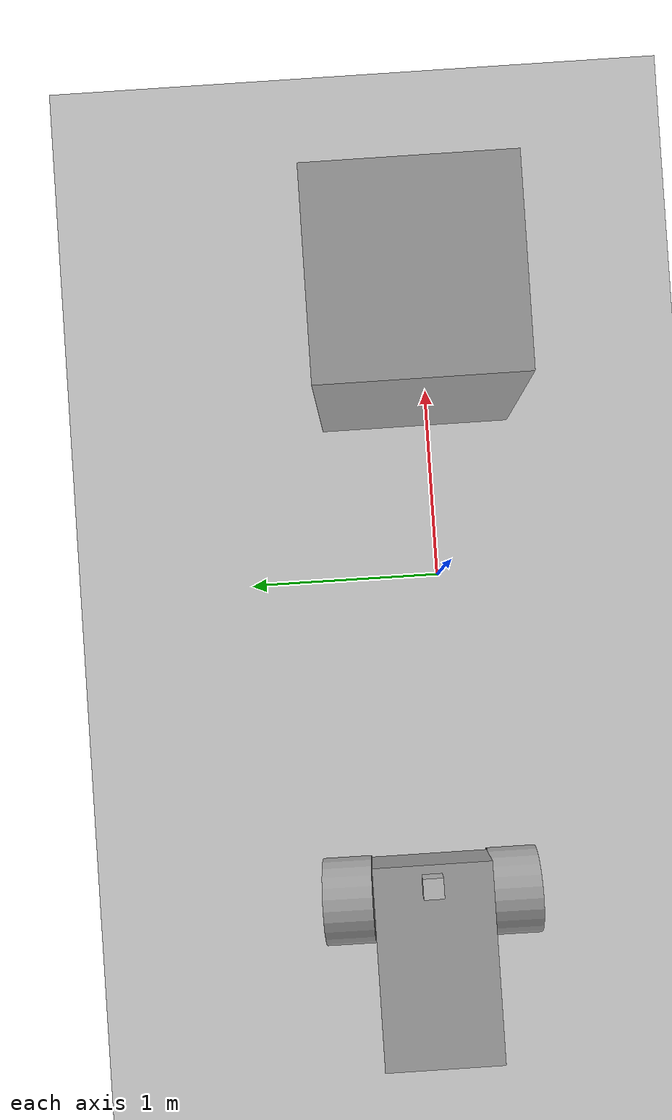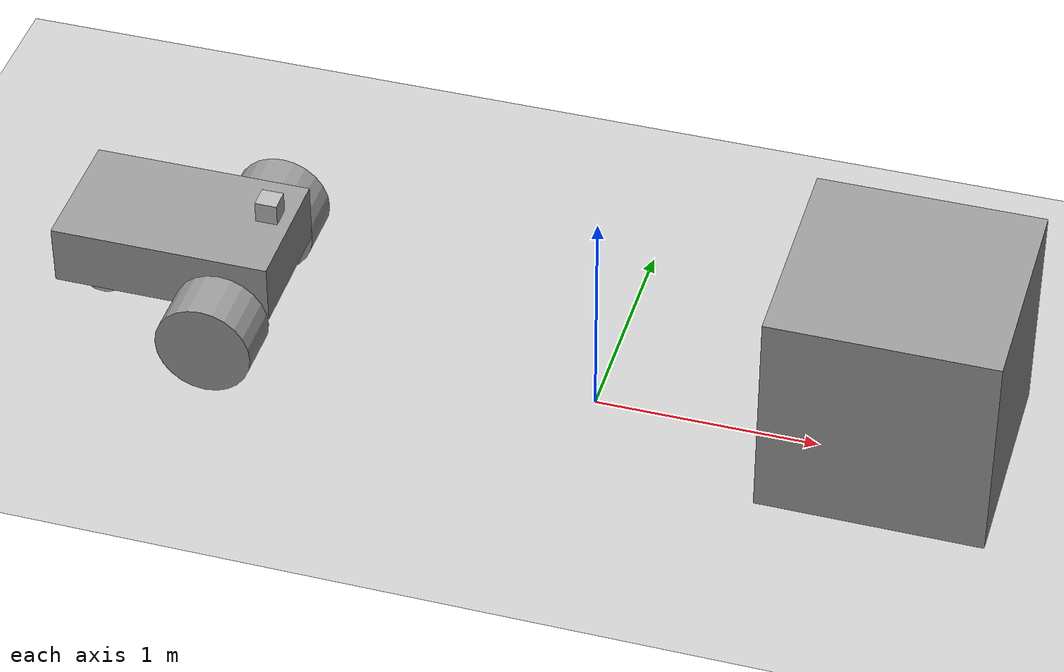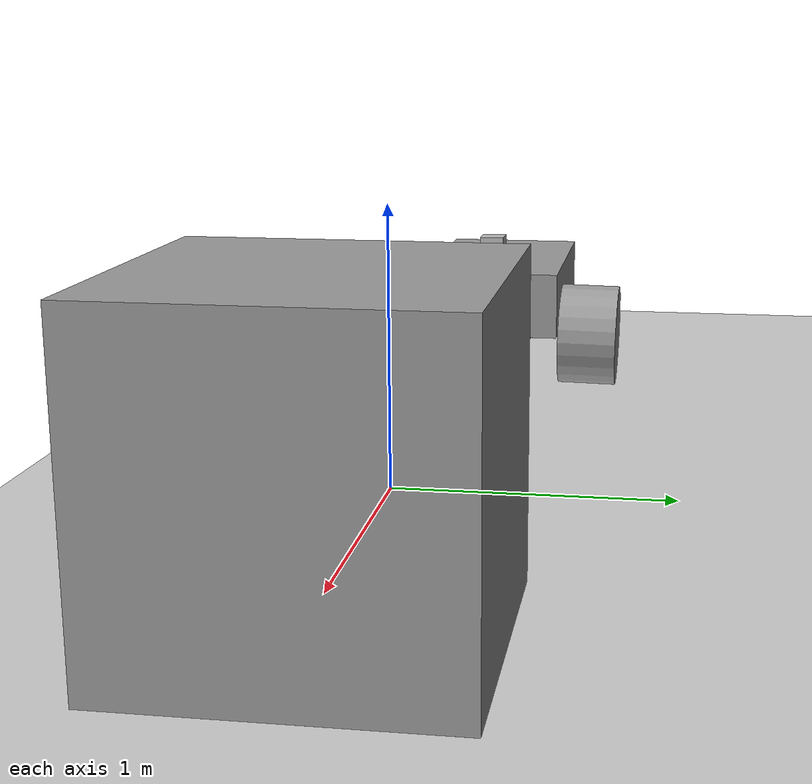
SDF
<sdf version="1.6">
 <world name="default">
  <light name="sun" type="directional">
   <pose>0 0 10 0 -0 0</pose>
   <diffuse>0.8 0.8 0.8 1</diffuse>
   <specular>0.2 0.2 0.2 1</specular>
   <attenuation>
    <range>1000</range>
    <constant>0.9</constant>
    <linear>0.01</linear>
    <quadratic>0.001</quadratic>
   </attenuation>
   <direction>-0.5 0.1 -0.9</direction>
  </light>
  <model name="ground_plane">
   <static>1</static>
   <link name="link">
    <collision name="collision">
     <geometry><plane><normal>0 0 1</normal><size>100 100</size></plane></geometry>
     <surface>
      <contact><collide_bitmask>65535</collide_bitmask></contact>
      <friction><ode><mu>100</mu><mu2>50</mu2></ode></friction>
     </surface>
    </collision>
    <visual name="visual">
     <cast_shadows>0</cast_shadows>
     <geometry><plane><normal>0 0 1</normal><size>100 100</size></plane></geometry>
     <material>
      <script><uri>file://media/materials/scripts/gazebo.material</uri><name>Gazebo/Grey</name></script>
     </material>
    </visual>
   </link>
  </model>
  <gravity>0 0 -9.8</gravity>
  <magnetic_field>6e-06 2.3e-05 -4.2e-05</magnetic_field>
  <atmosphere type="adiabatic"/>
  <physics name="default_physics" default="0" type="ode">
   <max_step_size>0.001</max_step_size>
   <real_time_factor>1</real_time_factor>
   <real_time_update_rate>1000</real_time_update_rate>
  </physics>
  <scene><ambient>0.4 0.4 0.4 1</ambient><background>0.7 0.7 0.7 1</background><shadows>1</shadows></scene>
  <audio><device>default</device></audio>
  <spherical_coordinates>
   <surface_model>EARTH_WGS84</surface_model>
   <latitude_deg>0</latitude_deg>
   <longitude_deg>0</longitude_deg>
   <elevation>0</elevation>
   <heading_deg>0</heading_deg>
  </spherical_coordinates>
  <model name="follower">
   <link name="link_0">
    <inertial>
     <mass>0.165058</mass>
     <inertia>
      <ixx>0.00589341</ixx>
      <ixy>0</ixy>
      <ixz>0</ixz>
      <iyy>0.0148231</iyy>
      <iyz>0</iyz>
      <izz>0.01858</izz>
     </inertia>
    </inertial>
    <pose>-0.121242 -0.000135 0.077307 0 -0 0</pose>
    <visual name="visual">
     <geometry><box><size>1 0.592281 0.278682</size></box></geometry>
     <material>
      <lighting>1</lighting>
      <script><uri>file://media/materials/scripts/gazebo.material</uri><name>Gazebo/Grey</name></script>
      <shader type="pixel"><normal_map>__default__</normal_map></shader>
      <ambient>0.3 0.3 0.3 1</ambient>
      <diffuse>0.7 0.7 0.7 1</diffuse>
      <specular>0.01 0.01 0.01 1</specular>
      <emissive>0 0 0 1</emissive>
     </material>
    </visual>
    <collision name="collision">
     <geometry><box><size>1 0.592281 0.278682</size></box></geometry>
     <surface>
      <friction>
       <ode><mu>1</mu><mu2>1</mu2><fdir1>0 0 0</fdir1><slip1>0</slip1><slip2>0</slip2></ode>
       <torsional>
        <coefficient>1</coefficient>
        <patch_radius>0</patch_radius>
        <surface_radius>0</surface_radius>
        <use_patch_radius>1</use_patch_radius>
        <ode><slip>0</slip></ode>
       </torsional>
      </friction>
      <bounce><restitution_coefficient>0</restitution_coefficient><threshold>1e+06</threshold></bounce>
      <contact>
       <collide_without_contact>0</collide_without_contact>
       <collide_without_contact_bitmask>1</collide_without_contact_bitmask>
       <collide_bitmask>1</collide_bitmask>
       <ode>
        <soft_cfm>0</soft_cfm>
        <soft_erp>0.2</soft_erp>
        <kp>1e+13</kp>
        <kd>1</kd>
        <max_vel>0.01</max_vel>
        <min_depth>0</min_depth>
       </ode>
       <bullet>
        <split_impulse>1</split_impulse>
        <split_impulse_penetration_threshold>-0.01</split_impulse_penetration_threshold>
        <soft_cfm>0</soft_cfm>
        <soft_erp>0.2</soft_erp>
        <kp>1e+13</kp>
        <kd>1</kd>
       </bullet>
      </contact>
     </surface>
    </collision>
   </link>
   <link name="link_1">
    <inertial>
     <mass>0.048626</mass>
     <inertia>
      <ixx>0.00084386</ixx>
      <ixy>0</ixy>
      <ixz>0</ixz>
      <iyy>0.00084386</iyy>
      <iyz>0</iyz>
      <izz>0.00117582</izz>
     </inertia>
    </inertial>
    <pose>0.158845 -0.425997 -0.08475 1.55224 -0 0</pose>
    <visual name="visual">
     <geometry><cylinder><radius>0.219914</radius><length>0.251324</length></cylinder></geometry>
     <material>
      <lighting>1</lighting>
      <script><uri>file://media/materials/scripts/gazebo.material</uri><name>Gazebo/Grey</name></script>
      <shader type="pixel"><normal_map>__default__</normal_map></shader>
      <ambient>0.3 0.3 0.3 1</ambient>
      <diffuse>0.7 0.7 0.7 1</diffuse>
      <specular>0.01 0.01 0.01 1</specular>
      <emissive>0 0 0 1</emissive>
     </material>
    </visual>
    <collision name="collision">
     <geometry><cylinder><radius>0.219914</radius><length>0.251324</length></cylinder></geometry>
     <surface>
      <friction>
       <ode><mu>1</mu><mu2>1</mu2><fdir1>0 0 0</fdir1><slip1>0</slip1><slip2>0</slip2></ode>
       <torsional>
        <coefficient>1</coefficient>
        <patch_radius>0</patch_radius>
        <surface_radius>0</surface_radius>
        <use_patch_radius>1</use_patch_radius>
        <ode><slip>0</slip></ode>
       </torsional>
      </friction>
      <bounce><restitution_coefficient>0</restitution_coefficient><threshold>1e+06</threshold></bounce>
      <contact>
       <collide_without_contact>0</collide_without_contact>
       <collide_without_contact_bitmask>1</collide_without_contact_bitmask>
       <collide_bitmask>1</collide_bitmask>
       <ode>
        <soft_cfm>0</soft_cfm>
        <soft_erp>0.2</soft_erp>
        <kp>1e+13</kp>
        <kd>1</kd>
        <max_vel>0.01</max_vel>
        <min_depth>0</min_depth>
       </ode>
       <bullet>
        <split_impulse>1</split_impulse>
        <split_impulse_penetration_threshold>-0.01</split_impulse_penetration_threshold>
        <soft_cfm>0</soft_cfm>
        <soft_erp>0.2</soft_erp>
        <kp>1e+13</kp>
        <kd>1</kd>
       </bullet>
      </contact>
     </surface>
    </collision>
   </link>
   <link name="link_1_clone">
    <inertial>
     <mass>0.048626</mass>
     <inertia>
      <ixx>0.00084386</ixx>
      <ixy>0</ixy>
      <ixz>0</ixz>
      <iyy>0.00084386</iyy>
      <iyz>0</iyz>
      <izz>0.00117582</izz>
     </inertia>
    </inertial>
    <pose>0.158844 0.425726 -0.08475 1.55224 -0 0</pose>
    <visual name="visual">
     <geometry><cylinder><radius>0.219914</radius><length>0.251324</length></cylinder></geometry>
     <material>
      <lighting>1</lighting>
      <script><uri>file://media/materials/scripts/gazebo.material</uri><name>Gazebo/Grey</name></script>
      <shader type="pixel"><normal_map>__default__</normal_map></shader>
      <ambient>0.3 0.3 0.3 1</ambient>
      <diffuse>0.7 0.7 0.7 1</diffuse>
      <specular>0.01 0.01 0.01 1</specular>
      <emissive>0 0 0 1</emissive>
     </material>
    </visual>
    <collision name="collision">
     <geometry><cylinder><radius>0.219914</radius><length>0.251324</length></cylinder></geometry>
     <surface>
      <friction>
       <ode><mu>1</mu><mu2>1</mu2><fdir1>0 0 0</fdir1><slip1>0</slip1><slip2>0</slip2></ode>
       <torsional>
        <coefficient>1</coefficient>
        <patch_radius>0</patch_radius>
        <surface_radius>0</surface_radius>
        <use_patch_radius>1</use_patch_radius>
        <ode><slip>0</slip></ode>
       </torsional>
      </friction>
      <bounce><restitution_coefficient>0</restitution_coefficient><threshold>1e+06</threshold></bounce>
      <contact>
       <collide_without_contact>0</collide_without_contact>
       <collide_without_contact_bitmask>1</collide_without_contact_bitmask>
       <collide_bitmask>1</collide_bitmask>
       <ode>
        <soft_cfm>0</soft_cfm>
        <soft_erp>0.2</soft_erp>
        <kp>1e+13</kp>
        <kd>1</kd>
        <max_vel>0.01</max_vel>
        <min_depth>0</min_depth>
       </ode>
       <bullet>
        <split_impulse>1</split_impulse>
        <split_impulse_penetration_threshold>-0.01</split_impulse_penetration_threshold>
        <soft_cfm>0</soft_cfm>
        <soft_erp>0.2</soft_erp>
        <kp>1e+13</kp>
        <kd>1</kd>
       </bullet>
      </contact>
     </surface>
    </collision>
   </link>
   <link name="link_2">
    <inertial>
     <mass>0.016832</mass>
     <inertia>
      <ixx>0.000110557</ixx>
      <ixy>0</ixy>
      <ixz>0</ixz>
      <iyy>0.000110557</iyy>
      <iyz>0</iyz>
      <izz>0.000110557</izz>
     </inertia>
    </inertial>
    <pose>-0.493099 -0.006064 -0.177666 0 -0 0</pose>
    <visual name="visual">
     <geometry><sphere><radius>0.128143</radius></sphere></geometry>
     <material>
      <lighting>1</lighting>
      <script><uri>file://media/materials/scripts/gazebo.material</uri><name>Gazebo/Grey</name></script>
      <shader type="pixel"/>
      <emissive>0 0 0 1</emissive>
     </material>
    </visual>
    <collision name="collision">
     <geometry><sphere><radius>0.128143</radius></sphere></geometry>
     <surface>
      <friction>
       <ode><mu>1</mu><mu2>1</mu2><fdir1>0 0 0</fdir1><slip1>0</slip1><slip2>0</slip2></ode>
       <torsional>
        <coefficient>1</coefficient>
        <patch_radius>0</patch_radius>
        <surface_radius>0</surface_radius>
        <use_patch_radius>1</use_patch_radius>
        <ode><slip>0</slip></ode>
       </torsional>
      </friction>
      <bounce><restitution_coefficient>0</restitution_coefficient><threshold>1e+06</threshold></bounce>
      <contact>
       <collide_without_contact>0</collide_without_contact>
       <collide_without_contact_bitmask>1</collide_without_contact_bitmask>
       <collide_bitmask>1</collide_bitmask>
       <ode>
        <soft_cfm>0</soft_cfm>
        <soft_erp>0.2</soft_erp>
        <kp>1e+13</kp>
        <kd>1</kd>
        <max_vel>0.01</max_vel>
        <min_depth>0</min_depth>
       </ode>
       <bullet>
        <split_impulse>1</split_impulse>
        <split_impulse_penetration_threshold>-0.01</split_impulse_penetration_threshold>
        <soft_cfm>0</soft_cfm>
        <soft_erp>0.2</soft_erp>
        <kp>1e+13</kp>
        <kd>1</kd>
       </bullet>
      </contact>
     </surface>
    </collision>
   </link>
   <model name="depth_camera">
    <link name="link">
     <pose>0 0 0.05 0 -0 0</pose>
     <inertial>
      <mass>0.1</mass>
      <inertia>
       <ixx>0.000166667</ixx>
       <iyy>0.000166667</iyy>
       <izz>0.000166667</izz>
       <ixy>0</ixy>
       <ixz>0</ixz>
       <iyz>0</iyz>
      </inertia>
     </inertial>
     <collision name="collision"><geometry><box><size>0.1 0.1 0.1</size></box></geometry></collision>
     <visual name="visual"><geometry><box><size>0.1 0.1 0.1</size></box></geometry></visual>
     <sensor name="camera" type="depth">
      <camera name="__default__">
       <horizontal_fov>1.047</horizontal_fov>
       <image><width>128</width><height>128</height></image>
       <clip><near>0.1</near><far>100</far></clip>
      </camera>
      <always_on>1</always_on>
      <update_rate>30</update_rate>
      <visualize>1</visualize>
     </sensor>
    </link>
    <pose>0.296651 0.006469 0.26986 0 -0 0</pose>
   </model>
   <joint name="link_0_JOINT_0" type="revolute">
    <parent>link_0</parent>
    <child>link_1_clone</child>
    <axis>
     <xyz>0 0 1</xyz>
     <use_parent_model_frame>0</use_parent_model_frame>
     <limit>
      <lower>-1.79769e+308</lower>
      <upper>1.79769e+308</upper>
      <effort>-1</effort>
      <velocity>-1</velocity>
     </limit>
     <dynamics>
      <spring_reference>0</spring_reference>
      <spring_stiffness>0</spring_stiffness>
      <damping>0</damping>
      <friction>0</friction>
     </dynamics>
    </axis>
    <physics>
     <ode><limit><cfm>0</cfm><erp>0.2</erp></limit><suspension><cfm>0</cfm><erp>0.2</erp></suspension></ode>
    </physics>
   </joint>
   <joint name="link_0_JOINT_1" type="revolute">
    <parent>link_0</parent>
    <child>link_1</child>
    <axis>
     <xyz>0 0 1</xyz>
     <use_parent_model_frame>0</use_parent_model_frame>
     <limit>
      <lower>-1.79769e+308</lower>
      <upper>1.79769e+308</upper>
      <effort>-1</effort>
      <velocity>-1</velocity>
     </limit>
     <dynamics>
      <spring_reference>0</spring_reference>
      <spring_stiffness>0</spring_stiffness>
      <damping>0</damping>
      <friction>0</friction>
     </dynamics>
    </axis>
    <physics>
     <ode><limit><cfm>0</cfm><erp>0.2</erp></limit><suspension><cfm>0</cfm><erp>0.2</erp></suspension></ode>
    </physics>
   </joint>
   <joint name="link_0_JOINT_2" type="ball">
    <parent>link_0</parent>
    <child>link_2</child>
    <physics>
     <ode><limit><cfm>0</cfm><erp>0.2</erp></limit><suspension><cfm>0</cfm><erp>0.2</erp></suspension></ode>
    </physics>
   </joint>
   <joint name="link_JOINT_3" type="fixed">
    <parent>link_0</parent>
    <child>depth_camera::link</child>
    <physics>
     <ode><limit><cfm>0</cfm><erp>0.2</erp></limit><suspension><cfm>0</cfm><erp>0.2</erp></suspension></ode>
    </physics>
   </joint>
   <static>0</static>
   <plugin name="actuator" filename="/Users/kirk/code/exo-follower/mod/actuator/build/libactuator.dylib"/>
   <plugin name="collector" filename="/Users/kirk/code/exo-follower/mod/collector/build/libcollector.dylib"/>
   <pose>-1.83038 0.154111 0.305661 0 -0 0</pose>
  </model>
  <model name="unit_box">
   <pose>1.31579 0.068325 0.5 0 -0 0</pose>
   <link name="link">
    <inertial>
     <mass>1</mass>
     <inertia>
      <ixx>0.166667</ixx>
      <ixy>0</ixy>
      <ixz>0</ixz>
      <iyy>0.166667</iyy>
      <iyz>0</iyz>
      <izz>0.166667</izz>
     </inertia>
    </inertial>
    <collision name="collision"><geometry><box><size>1 1 1</size></box></geometry></collision>
    <visual name="visual">
     <geometry><box><size>1 1 1</size></box></geometry>
     <material>
      <script><name>Gazebo/Grey</name><uri>file://media/materials/scripts/gazebo.material</uri></script>
     </material>
    </visual>
   </link>
  </model>
 </world>
</sdf>
